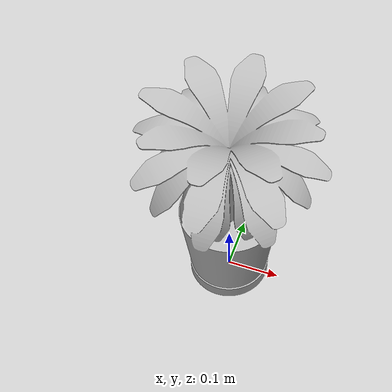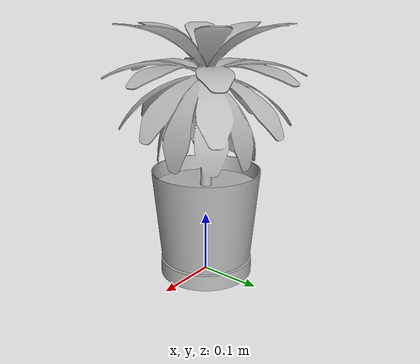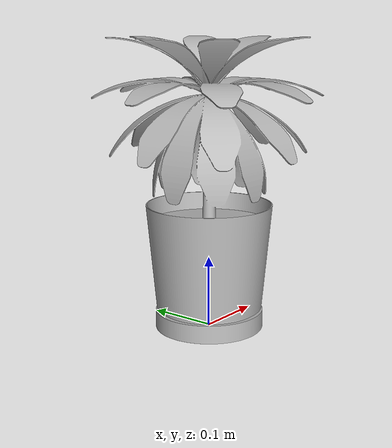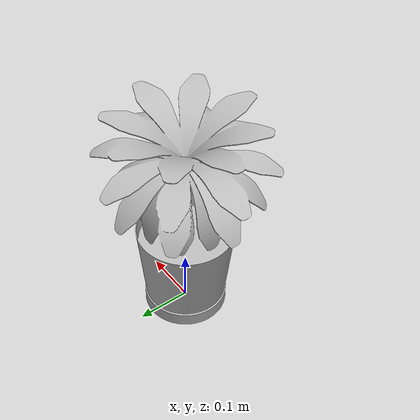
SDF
<?xml version="1.0" ?>
<sdf version="1.6">
  <model name="planta_maceta">
    <link name="base_link">

      <inertial>
        <pose>0 0 0.05 0 0 0</pose>
        <mass>0.3</mass>
        <inertia>
          <ixx>0.0004375</ixx> <ixy>0.0</ixy> <ixz>0.0</ixz>
          <iyy>0.0004375</iyy> <iyz>0.0</iyz>
          <izz>0.000375</izz>
        </inertia>
      </inertial>

      <collision name="collision_maceta">
        <pose>0 0 0.05 0 0 0</pose>
        <geometry>
          <cylinder>
            <radius>0.05</radius> <length>0.10</length> </cylinder>
        </geometry>
        <surface>
          <friction>
            <ode>
              <mu>100.0</mu>
              <mu2>100.0</mu2>
            </ode>
          </friction>
        </surface>
      </collision>

      <visual name="visual_planta">
        <pose>0 0 0 0 0 0</pose>
        <geometry>
          <mesh>
            <uri>model://planta_maceta/meshes/planta.dae</uri>
            <scale>1 1 1</scale>
          </mesh>
        </geometry>
      </visual>

    </link>
  </model>
</sdf>
